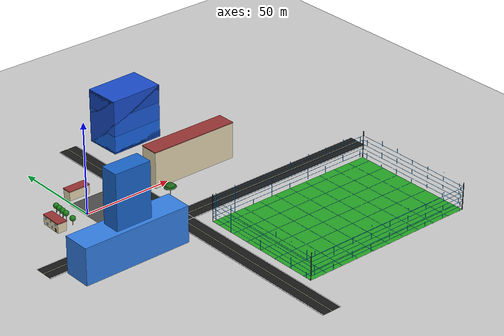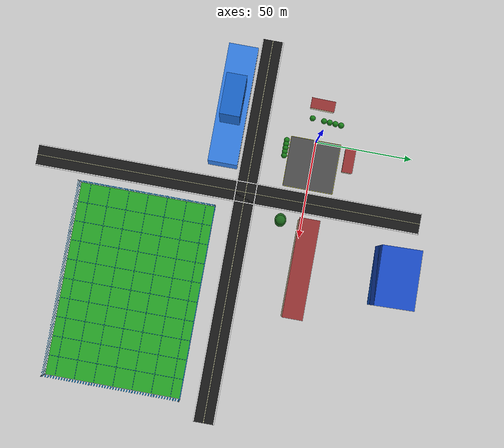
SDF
<?xml version="1.0" encoding="UTF-8"?>
<sdf version="1.9">
  <world name="uwb">

    <!-- ===================== 1. PHYSICS & GPS COORDINATE ===================== -->
    <physics type="ode">
      <max_step_size>0.004</max_step_size>
      <real_time_factor>1.0</real_time_factor>
      <real_time_update_rate>250</real_time_update_rate>
    </physics>
    <gravity>0 0 -9.8</gravity>
    <magnetic_field>6e-06 2.3e-05 -4.2e-05</magnetic_field>
    <atmosphere type="adiabatic"/>
    <spherical_coordinates>
      <surface_model>EARTH_WGS84</surface_model>
      <world_frame_orientation>ENU</world_frame_orientation>
      <latitude_deg>10.851572</latitude_deg>
      <longitude_deg>106.772496</longitude_deg>
      <elevation>10.0</elevation>
      <heading_deg>0</heading_deg>
    </spherical_coordinates>

    <!-- ===================== 2. ENVIRONMENT & LIGHT ===================== -->
    <scene>
      <grid>true</grid>
      <ambient>0.4 0.4 0.4 1</ambient>
      <background>0.7 0.7 0.7 1</background>
      <shadows>true</shadows>
    </scene>
    <light name="sunUTC" type="directional">
      <pose>0 0 500 0 -0 0</pose>
      <cast_shadows>true</cast_shadows>
      <intensity>1</intensity>
      <direction>0.001 -0.625 -0.78</direction>
      <diffuse>0.904 0.904 0.904 1</diffuse>
      <specular>0.271 0.271 0.271 1</specular>
      <attenuation>
        <range>2000</range>
        <linear>0</linear>
        <constant>1</constant>
        <quadratic>0</quadratic>
      </attenuation>
      <spot>
        <inner_angle>0</inner_angle>
        <outer_angle>0</outer_angle>
        <falloff>0</falloff>
      </spot>
    </light>

    <!-- ===================== 3. WORLD MODELS ===================== -->
    <model name="ground_plane">
      <static>true</static>
      <link name="link">
        <collision name="collision">
          <geometry>
            <plane>
              <normal>0 0 1</normal>
              <size>500 500</size>
            </plane>
          </geometry>
          <surface>
            <friction>
              <ode/>
            </friction>
            <bounce/>
            <contact/>
          </surface>
        </collision>
        <visual name="visual">
          <geometry>
            <plane>
              <normal>0 0 1</normal>
              <size>500 500</size>
            </plane>
          </geometry>
          <material>
            <ambient>0.8 0.8 0.8 1</ambient>
            <diffuse>0.8 0.8 0.8 1</diffuse>
            <specular>0.8 0.8 0.8 1</specular>
          </material>
        </visual>
        <pose>0 0 0 0 -0 0</pose>
        <inertial>
          <pose>0 0 0 0 -0 0</pose>
          <mass>1</mass>
          <inertia>
            <ixx>1</ixx>
            <ixy>0</ixy>
            <ixz>0</ixz>
            <iyy>1</iyy>
            <iyz>0</iyz>
            <izz>1</izz>
          </inertia>
        </inertial>
        <enable_wind>false</enable_wind>
      </link>
      <pose>0 0 0 0 -0 0</pose>
      <self_collide>false</self_collide>
    </model>
    <!-- UWB world environment (buildings, trees, roads, soccer field, helipad) -->
    <include>
      <uri>model://uwb</uri>
      <pose>0 0 0 0 0 0</pose>
    </include>
    <model name="anchor_0">
      <static>true</static>
      <pose>-2.5 -2.5 0.5 0 0 0</pose>
      <link name="link">
        <visual name="visual">
          <geometry><box><size>0.05 0.05 0.05</size></box></geometry>
          <material><ambient>1 0 0 1</ambient><diffuse>1 0 0 1</diffuse></material>
        </visual>
      </link>
    </model>
    <model name="anchor_1">
      <static>true</static>
      <pose>2.5 -2.5 3.0 0 0 0</pose>
      <link name="link">
        <visual name="visual">
          <geometry><box><size>0.05 0.05 0.05</size></box></geometry>
          <material><ambient>1 0 0 1</ambient><diffuse>1 0 0 1</diffuse></material>
        </visual>
      </link>
    </model>
    <model name="anchor_2">
      <static>true</static>
      <pose>2.5 2.5 0.5 0 0 0</pose>
      <link name="link">
        <visual name="visual">
          <geometry><box><size>0.05 0.05 0.05</size></box></geometry>
          <material><ambient>1 0 0 1</ambient><diffuse>1 0 0 1</diffuse></material>
        </visual>
      </link>
    </model>
    <model name="anchor_3">
      <static>true</static>
      <pose>-2.5 2.5 3.0 0 0 0</pose>
      <link name="link">
        <visual name="visual">
          <geometry><box><size>0.05 0.05 0.05</size></box></geometry>
          <material><ambient>1 0 0 1</ambient><diffuse>1 0 0 1</diffuse></material>
        </visual>
      </link>
    </model>

  </world>
</sdf>

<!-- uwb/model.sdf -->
<sdf version="1.9">
  <!-- UWB world environment: buildings, trees, roads, soccer field, helipad + UWB anchors.
       Self-contained: heliport texture lives under model://uwb/materials/textures. -->
  <model name="uwb">
    <static>true</static>

    <model name="long_2story_building">
      <static>true</static>
      <pose>7 18 0.01 0 0 0</pose>
      <link name="body">
        <collision name="walls_collision">
          <pose>0 0 2.5 0 0 0</pose>
          <geometry>
            <box>
              <size>12 5 5</size>
            </box>
          </geometry>
        </collision>

        <visual name="walls_visual">
          <pose>0 0 2.5 0 0 0</pose>
          <geometry>
            <box>
              <size>12 5 5</size>
            </box>
          </geometry>
          <material>
            <ambient>0.9 0.85 0.7 1</ambient>
            <diffuse>0.9 0.85 0.7 1</diffuse>
          </material>
        </visual>

        <visual name="roof_visual">
          <pose>0 0 5.2 0 0 0</pose>
          <geometry>
            <box>
              <size>12.4 5.4 0.4</size>
            </box>
          </geometry>
          <material>
            <ambient>0.6 0.2 0.2 1</ambient>
            <diffuse>0.6 0.2 0.2 1</diffuse>
          </material>
        </visual>

        <visual name="door_visual">
          <pose>-4 2.51 1 0 0 0</pose>
          <geometry>
            <box><size>1.2 0.05 2.0</size></box>
          </geometry>
          <material>
            <ambient>0.4 0.2 0.1 1</ambient>
          </material>
        </visual>

        <visual name="w_t1_left">
          <pose>-1 2.51 1.5 0 0 0</pose>
          <geometry><box><size>1 0.06 1</size></box></geometry>
          <material><ambient>0.5 0.8 1 1</ambient></material>
        </visual>
        <visual name="w_t1_right">
          <pose>3 2.51 1.5 0 0 0</pose>
          <geometry><box><size>1 0.06 1</size></box></geometry>
          <material><ambient>0.5 0.8 1 1</ambient></material>
        </visual>

        <visual name="w_t2_left">
          <pose>-4 2.51 4 0 0 0</pose>
          <geometry><box><size>1 0.06 1</size></box></geometry>
          <material><ambient>0.5 0.8 1 1</ambient></material>
        </visual>
        <visual name="w_t2_center">
          <pose>0 2.51 4 0 0 0</pose>
          <geometry><box><size>1 0.06 1</size></box></geometry>
          <material><ambient>0.5 0.8 1 1</ambient></material>
        </visual>
        <visual name="w_t2_right">
          <pose>4 2.51 4 0 0 0</pose>
          <geometry><box><size>1 0.06 1</size></box></geometry>
          <material><ambient>0.5 0.8 1 1</ambient></material>
        </visual>
      </link>
    </model>

    <model name="3long_2story_building">
      <static>true</static>
      <pose>-19 0 0.01 0 0 1.55</pose>
      <link name="body">
        <collision name="walls_collision">
          <pose>0 0 2.5 0 0 0</pose>
          <geometry>
            <box>
              <size>12 5 5</size>
            </box>
          </geometry>
        </collision>

        <visual name="walls_visual">
          <pose>0 0 2.5 0 0 0</pose>
          <geometry>
            <box>
              <size>12 5 5</size>
            </box>
          </geometry>
          <material>
            <ambient>0.9 0.85 0.7 1</ambient>
            <diffuse>0.9 0.85 0.7 1</diffuse>
          </material>
        </visual>

        <visual name="roof_visual">
          <pose>0 0 5.2 0 0 0</pose>
          <geometry>
            <box>
              <size>12.4 5.4 0.4</size>
            </box>
          </geometry>
          <material>
            <ambient>0.6 0.2 0.2 1</ambient>
            <diffuse>0.6 0.2 0.2 1</diffuse>
          </material>
        </visual>

        <visual name="door_visual">
          <pose>-4 2.51 1 0 0 0</pose>
          <geometry>
            <box><size>1.2 0.05 2.0</size></box>
          </geometry>
          <material>
            <ambient>0.4 0.2 0.1 1</ambient>
          </material>
        </visual>

        <visual name="w_t1_left">
          <pose>-1 2.51 1.5 0 0 0</pose>
          <geometry><box><size>1 0.06 1</size></box></geometry>
          <material><ambient>0.5 0.8 1 1</ambient></material>
        </visual>
        <visual name="w_t1_right">
          <pose>3 2.51 1.5 0 0 0</pose>
          <geometry><box><size>1 0.06 1</size></box></geometry>
          <material><ambient>0.5 0.8 1 1</ambient></material>
        </visual>

        <visual name="w_t2_left">
          <pose>-4 2.51 4 0 0 0</pose>
          <geometry><box><size>1 0.06 1</size></box></geometry>
          <material><ambient>0.5 0.8 1 1</ambient></material>
        </visual>
        <visual name="w_t2_center">
          <pose>0 2.51 4 0 0 0</pose>
          <geometry><box><size>1 0.06 1</size></box></geometry>
          <material><ambient>0.5 0.8 1 1</ambient></material>
        </visual>
        <visual name="w_t2_right">
          <pose>4 2.51 4 0 0 0</pose>
          <geometry><box><size>1 0.06 1</size></box></geometry>
          <material><ambient>0.5 0.8 1 1</ambient></material>
        </visual>
      </link>
    </model>

    <model name="2long_2story_building">
      <static>true</static>
      <pose>66 3 0.01 0 0 0</pose>
      <link name="body">
        <collision name="walls_collision">
          <pose>0 0 15 0 0 0</pose>
          <geometry>
            <box>
              <size>50 10 20</size>
            </box>
          </geometry>
        </collision>

        <visual name="walls_visual">
          <pose>0 0 10 0 0 0</pose>
          <geometry>
            <box>
              <size>50 10 20</size>
            </box>
          </geometry>
          <material>
            <ambient>0.9 0.85 0.7 1</ambient>
            <diffuse>0.9 0.85 0.7 1</diffuse>
          </material>
        </visual>

        <visual name="roof_visual">
          <pose>0 0 20.2 0 0 0</pose>
          <geometry>
            <box>
              <size>50.4 10.4 0.4</size>
            </box>
          </geometry>
          <material>
            <ambient>0.6 0.2 0.2 1</ambient>
            <diffuse>0.6 0.2 0.2 1</diffuse>
          </material>
        </visual>

        <visual name="door_visual">
          <pose>-20 2.51 1 0 0 0</pose>
          <geometry>
            <box><size>1.2 0.05 2.0</size></box>
          </geometry>
          <material>
            <ambient>0.4 0.2 0.1 1</ambient>
          </material>
        </visual>

        <visual name="w_t1_left">
          <pose>-20 2.51 1.5 0 0 0</pose>
          <geometry><box><size>1 0.06 1</size></box></geometry>
          <material><ambient>0.5 0.8 1 1</ambient></material>
        </visual>
        <visual name="w_t1_center_left">
          <pose>-8 2.51 1.5 0 0 0</pose>
          <geometry><box><size>1 0.06 1</size></box></geometry>
          <material><ambient>0.5 0.8 1 1</ambient></material>
        </visual>
        <visual name="w_t1_center_right">
          <pose>8 2.51 1.5 0 0 0</pose>
          <geometry><box><size>1 0.06 1</size></box></geometry>
          <material><ambient>0.5 0.8 1 1</ambient></material>
        </visual>
        <visual name="w_t1_right">
          <pose>20 2.51 1.5 0 0 0</pose>
          <geometry><box><size>1 0.06 1</size></box></geometry>
          <material><ambient>0.5 0.8 1 1</ambient></material>
        </visual>

        <visual name="w_t2_left">
          <pose>-20 2.51 4 0 0 0</pose>
          <geometry><box><size>1 0.06 1</size></box></geometry>
          <material><ambient>0.5 0.8 1 1</ambient></material>
        </visual>
        <visual name="w_t2_center_left">
          <pose>-8 2.51 4 0 0 0</pose>
          <geometry><box><size>1 0.06 1</size></box></geometry>
          <material><ambient>0.5 0.8 1 1</ambient></material>
        </visual>
        <visual name="w_t2_center">
          <pose>0 2.51 4 0 0 0</pose>
          <geometry><box><size>1 0.06 1</size></box></geometry>
          <material><ambient>0.5 0.8 1 1</ambient></material>
        </visual>
        <visual name="w_t2_center_right">
          <pose>8 2.51 4 0 0 0</pose>
          <geometry><box><size>1 0.06 1</size></box></geometry>
          <material><ambient>0.5 0.8 1 1</ambient></material>
        </visual>
        <visual name="w_t2_right">
          <pose>20 2.51 4 0 0 0</pose>
          <geometry><box><size>1 0.06 1</size></box></geometry>
          <material><ambient>0.5 0.8 1 1</ambient></material>
        </visual>
      </link>
    </model>

    <!-- Updated Building: 100m x 10m x 30m, 3 floors with multiple windows -->
    <model name="building_centered_tower">
      <static>true</static>
      <pose>-9 -45 0 0 0 0</pose>
      <link name="link">
        <visual name="base_structure">
          <pose>0 0 10 0 0 0</pose>
          <geometry>
            <box><size>60 15 20</size></box>
          </geometry>
          <material>
            <ambient>0.2 0.5 0.9 1</ambient>
            <diffuse>0.2 0.5 0.9 1</diffuse>
          </material>
        </visual>

        <visual name="center_tower">
          <pose>0 0 35 0 0 0</pose>
          <geometry>
            <box><size>20 10 30</size></box>
          </geometry>
          <material>
            <ambient>0.1 0.4 0.8 1</ambient>
            <diffuse>0.1 0.4 0.8 1</diffuse>
          </material>
        </visual>

        <visual name="tower_window_frame">
          <pose>0 5.01 40 0 0 0</pose>
          <geometry><box><size>4 0.1 6</size></box></geometry>
          <material><ambient>0.1 0.1 0.1 1</ambient></material>
        </visual>

        <visual name="tower_window_glass">
          <pose>0 5.05 40 0 0 0</pose>
          <geometry><box><size>3.6 0.05 5.6</size></box></geometry>
          <material>
            <ambient>0.4 0.7 0.95 0.6</ambient>
            <diffuse>0.4 0.7 0.95 0.6</diffuse>
          </material>
        </visual>

        <visual name="base_balcony_line">
          <pose>0 7.55 15 0 0 0</pose>
          <geometry><box><size>60 0.2 1</size></box></geometry>
          <material><ambient>1 1 1 1</ambient></material>
        </visual>
      </link>
    </model>

    <!-- New blue house: 3 floors, 20x30x30 m -->
    <model name="blue_3floor_house">
      <static>true</static>
      <pose>62 50 0.01 0 0 1.6</pose>
      <link name="body">
        <collision name="collision">
          <pose>0 0 15 0 0 0</pose>
          <geometry><box><size>20 30 30</size></box></geometry>
        </collision>

        <visual name="walls_visual">
          <pose>0 0 15 0 0 0</pose>
          <geometry><box><size>20 30 30</size></box></geometry>
          <material>
            <ambient>0.1 0.3 0.8 1</ambient>
            <diffuse>0.1 0.3 0.8 1</diffuse>
          </material>
        </visual>

        <visual name="floor1">
          <pose>0 0 5 0 0 0</pose>
          <geometry><box><size>20 30 10</size></box></geometry>
          <material>
            <ambient>0.1 0.4 0.9 1</ambient>
            <diffuse>0.1 0.4 0.9 1</diffuse>
          </material>
        </visual>

        <visual name="floor2">
          <pose>0 0 15 0 0 0</pose>
          <geometry><box><size>20 30 10</size></box></geometry>
          <material>
            <ambient>0.1 0.35 0.85 1</ambient>
            <diffuse>0.1 0.35 0.85 1</diffuse>
          </material>
        </visual>

        <visual name="floor3">
          <pose>0 0 25 0 0 0</pose>
          <geometry><box><size>20 30 10</size></box></geometry>
          <material>
            <ambient>0.08 0.28 0.75 1</ambient>
            <diffuse>0.08 0.28 0.75 1</diffuse>
          </material>
        </visual>

        <inertial>
          <mass>1000</mass>
          <inertia>
            <ixx>1</ixx><ixy>0</ixy><ixz>0</ixz><iyy>1</iyy><iyz>0</iyz><izz>1</izz>
          </inertia>
        </inertial>
      </link>
    </model>

    <model name="tree_model">
      <static>true</static>
      <pose>43 -11 0 0 0 0</pose>
      <link name="link">
        <collision name="trunk_collision">
          <pose>0 0 2 0 0 0</pose>
          <geometry>
            <cylinder>
              <radius>0.15</radius>
              <length>4.0</length>
            </cylinder>
          </geometry>
        </collision>

        <visual name="trunk_visual">
          <pose>0 0 2 0 0 0</pose>
          <geometry>
            <cylinder>
              <radius>0.15</radius>
              <length>4.0</length>
            </cylinder>
          </geometry>
          <material>
            <ambient>0.3 0.2 0.1 1</ambient>
            <diffuse>0.3 0.2 0.1 1</diffuse>
          </material>
        </visual>

        <visual name="branch_1">
          <pose>-0.5 0 3.5 0 -0.8 0</pose>
          <geometry>
            <cylinder>
              <radius>0.08</radius>
              <length>1.5</length>
            </cylinder>
          </geometry>
          <material>
            <ambient>0.3 0.2 0.1 1</ambient>
          </material>
        </visual>

        <visual name="branch_2">
          <pose>0.5 0 3.5 0 0.8 0</pose>
          <geometry>
            <cylinder>
              <radius>0.08</radius>
              <length>1.5</length>
            </cylinder>
          </geometry>
          <material>
            <ambient>0.3 0.2 0.1 1</ambient>
          </material>
        </visual>

        <visual name="leaves_top">
          <pose>0 0 5 0 0 0</pose>
          <geometry>
            <ellipsoid>
              <radii>2.5 2.5 1.2</radii>
            </ellipsoid>
          </geometry>
          <material>
            <ambient>0.1 0.4 0.1 1</ambient>
            <diffuse>0.1 0.4 0.1 1</diffuse>
          </material>
        </visual>

        <visual name="leaves_lower">
          <pose>0 0 4.2 0 0 0</pose>
          <geometry>
            <ellipsoid>
              <radii>3.5 3.0 0.8</radii>
            </ellipsoid>
          </geometry>
          <material>
            <ambient>0.1 0.35 0.1 0.9</ambient>
            <diffuse>0.1 0.35 0.1 0.9</diffuse>
          </material>
        </visual>
      </link>
    </model>

    <!-- Row of 5 trees, 5m tall, spaced 2m apart -->
    <model name="tree_row">
      <static>true</static>
      <pose>6 -15 0 0 0 0</pose>
      <link name="link">
        <!-- Tree 1 -->
        <visual name="tree_1_trunk">
          <pose>-4 0 1.25 0 0 0</pose>
          <geometry><cylinder><radius>0.15</radius><length>2.5</length></cylinder></geometry>
          <material><ambient>0.4 0.2 0.1 1</ambient><diffuse>0.4 0.2 0.1 1</diffuse></material>
        </visual>
        <visual name="tree_1_foliage">
          <pose>-4 0 3.8 0 0 0</pose>
          <geometry><sphere><radius>1.5</radius></sphere></geometry>
          <material><ambient>0.1 0.5 0.1 1</ambient><diffuse>0.1 0.5 0.1 1</diffuse></material>
        </visual>

        <!-- Tree 2 -->
        <visual name="tree_2_trunk">
          <pose>-2 0 1.25 0 0 0</pose>
          <geometry><cylinder><radius>0.15</radius><length>2.5</length></cylinder></geometry>
          <material><ambient>0.4 0.2 0.1 1</ambient><diffuse>0.4 0.2 0.1 1</diffuse></material>
        </visual>
        <visual name="tree_2_foliage">
          <pose>-2 0 3.8 0 0 0</pose>
          <geometry><sphere><radius>1.5</radius></sphere></geometry>
          <material><ambient>0.1 0.5 0.1 1</ambient><diffuse>0.1 0.5 0.1 1</diffuse></material>
        </visual>

        <!-- Tree 3 -->
        <visual name="tree_3_trunk">
          <pose>0 0 1.25 0 0 0</pose>
          <geometry><cylinder><radius>0.15</radius><length>2.5</length></cylinder></geometry>
          <material><ambient>0.4 0.2 0.1 1</ambient><diffuse>0.4 0.2 0.1 1</diffuse></material>
        </visual>
        <visual name="tree_3_foliage">
          <pose>0 0 3.8 0 0 0</pose>
          <geometry><sphere><radius>1.5</radius></sphere></geometry>
          <material><ambient>0.1 0.5 0.1 1</ambient><diffuse>0.1 0.5 0.1 1</diffuse></material>
        </visual>

        <!-- Tree 4 -->
        <visual name="tree_4_trunk">
          <pose>2 0 1.25 0 0 0</pose>
          <geometry><cylinder><radius>0.15</radius><length>2.5</length></cylinder></geometry>
          <material><ambient>0.4 0.2 0.1 1</ambient><diffuse>0.4 0.2 0.1 1</diffuse></material>
        </visual>
        <visual name="tree_4_foliage">
          <pose>2 0 3.8 0 0 0</pose>
          <geometry><sphere><radius>1.5</radius></sphere></geometry>
          <material><ambient>0.1 0.5 0.1 1</ambient><diffuse>0.1 0.5 0.1 1</diffuse></material>
        </visual>

        <!-- Tree 5 -->
        <visual name="tree_5_trunk">
          <pose>4 0 1.25 0 0 0</pose>
          <geometry><cylinder><radius>0.15</radius><length>2.5</length></cylinder></geometry>
          <material><ambient>0.4 0.2 0.1 1</ambient><diffuse>0.4 0.2 0.1 1</diffuse></material>
        </visual>
        <visual name="tree_5_foliage">
          <pose>4 0 3.8 0 0 0</pose>
          <geometry><sphere><radius>1.5</radius></sphere></geometry>
          <material><ambient>0.1 0.5 0.1 1</ambient><diffuse>0.1 0.5 0.1 1</diffuse></material>
        </visual>
      </link>
    </model>

    <!-- Row of 5 trees, 5m tall, spaced 2m apart -->
    <model name="four_row">
      <static>true</static>
      <pose>-11 2 0 0 0 1.5</pose>
      <link name="link">
        <!-- Tree 1 -->
        <visual name="tree_1_trunk">
          <pose>-6 0 1.25 0 0 0</pose>
          <geometry><cylinder><radius>0.15</radius><length>2.5</length></cylinder></geometry>
          <material><ambient>0.4 0.2 0.1 1</ambient><diffuse>0.4 0.2 0.1 1</diffuse></material>
        </visual>
        <visual name="tree_1_foliage">
          <pose>-6 0 3.8 0 0 0</pose>
          <geometry><sphere><radius>1.5</radius></sphere></geometry>
          <material><ambient>0.1 0.5 0.1 1</ambient><diffuse>0.1 0.5 0.1 1</diffuse></material>
        </visual>

        <!-- Tree 2 -->
        <visual name="tree_2_trunk">
          <pose>0 0 1.25 0 0 0</pose>
          <geometry><cylinder><radius>0.15</radius><length>2.5</length></cylinder></geometry>
          <material><ambient>0.4 0.2 0.1 1</ambient><diffuse>0.4 0.2 0.1 1</diffuse></material>
        </visual>
        <visual name="tree_2_foliage">
          <pose>0 0 3.8 0 0 0</pose>
          <geometry><sphere><radius>1.5</radius></sphere></geometry>
          <material><ambient>0.1 0.5 0.1 1</ambient><diffuse>0.1 0.5 0.1 1</diffuse></material>
        </visual>

        <!-- Tree 3 -->
        <visual name="tree_3_trunk">
          <pose>3 0 1.25 0 0 0</pose>
          <geometry><cylinder><radius>0.15</radius><length>2.5</length></cylinder></geometry>
          <material><ambient>0.4 0.2 0.1 1</ambient><diffuse>0.4 0.2 0.1 1</diffuse></material>
        </visual>
        <visual name="tree_3_foliage">
          <pose>3 0 3.8 0 0 0</pose>
          <geometry><sphere><radius>1.5</radius></sphere></geometry>
          <material><ambient>0.1 0.5 0.1 1</ambient><diffuse>0.1 0.5 0.1 1</diffuse></material>
        </visual>

        <!-- Tree 4 -->
        <visual name="tree_4_trunk">
          <pose>6 0 1.25 0 0 0</pose>
          <geometry><cylinder><radius>0.15</radius><length>2.5</length></cylinder></geometry>
          <material><ambient>0.4 0.2 0.1 1</ambient><diffuse>0.4 0.2 0.1 1</diffuse></material>
        </visual>
        <visual name="tree_4_foliage">
          <pose>6 0 3.8 0 0 0</pose>
          <geometry><sphere><radius>1.5</radius></sphere></geometry>
          <material><ambient>0.1 0.5 0.1 1</ambient><diffuse>0.1 0.5 0.1 1</diffuse></material>
        </visual>

        <!-- Tree 5 -->
        <visual name="tree_5_trunk">
          <pose>9 0 1.25 0 0 0</pose>
          <geometry><cylinder><radius>0.15</radius><length>2.5</length></cylinder></geometry>
          <material><ambient>0.4 0.2 0.1 1</ambient><diffuse>0.4 0.2 0.1 1</diffuse></material>
        </visual>
        <visual name="tree_5_foliage">
          <pose>9 0 3.8 0 0 0</pose>
          <geometry><sphere><radius>1.5</radius></sphere></geometry>
          <material><ambient>0.1 0.5 0.1 1</ambient><diffuse>0.1 0.5 0.1 1</diffuse></material>
        </visual>
      </link>
    </model>

    <!-- Asphalt Road with white and yellow markings -->
    <model name="road">
      <static>true</static>
      <pose>52 -31 0 0 0 0</pose>
      <link name="link">
        <visual name="asphalt_surface">
          <pose>0 0 0.01 0 0 0</pose>
          <geometry><box><size>200 10 0.02</size></box></geometry>
          <material>
            <ambient>0.1 0.1 0.1 1</ambient>
            <diffuse>0.1 0.1 0.1 1</diffuse>
          </material>
        </visual>

        <visual name="white_border_left">
          <pose>0 -5.25 0.02 0 0 0</pose>
          <geometry><box><size>200 0.5 0.05</size></box></geometry>
          <material>
            <ambient>1 1 1 1</ambient>
            <diffuse>1 1 1 1</diffuse>
          </material>
        </visual>

        <visual name="white_border_right">
          <pose>0 5.25 0.02 0 0 0</pose>
          <geometry><box><size>200 0.5 0.05</size></box></geometry>
          <material>
            <ambient>1 1 1 1</ambient>
            <diffuse>1 1 1 1</diffuse>
          </material>
        </visual>

        <visual name="yellow_center_line">
          <pose>0 0 0.02 0 0 0</pose>
          <geometry><box><size>200 0.3 0.05</size></box></geometry>
          <material>
            <ambient>1 1 0.8 1</ambient>
            <diffuse>1 1 0.8 1</diffuse>
          </material>
        </visual>
      </link>
    </model>

    <!-- Horizontal Road (perpendicular) - creates intersection -->
    <model name="horizontal_road">
      <static>true</static>
      <pose>32 -40 0 0 0 0</pose>
      <link name="link">
        <visual name="asphalt_surface_h">
          <pose>0 0 0.01 0 0 0</pose>
          <geometry><box><size>10 200 0.02</size></box></geometry>
          <material>
            <ambient>0.1 0.1 0.1 1</ambient>
            <diffuse>0.1 0.1 0.1 1</diffuse>
          </material>
        </visual>

        <visual name="white_border_front">
          <pose>-5.25 0 0.02 0 0 0</pose>
          <geometry><box><size>0.5 200 0.05</size></box></geometry>
          <material>
            <ambient>1 1 1 1</ambient>
            <diffuse>1 1 1 1</diffuse>
          </material>
        </visual>

        <visual name="white_border_back">
          <pose>5.25 0 0.02 0 0 0</pose>
          <geometry><box><size>0.5 200 0.05</size></box></geometry>
          <material>
            <ambient>1 1 1 1</ambient>
            <diffuse>1 1 1 1</diffuse>
          </material>
        </visual>

        <visual name="yellow_center_line_h">
          <pose>0 0 0.02 0 0 0</pose>
          <geometry><box><size>0.3 200 0.05</size></box></geometry>
          <material>
            <ambient>1 1 0.8 1</ambient>
            <diffuse>1 1 0.8 1</diffuse>
          </material>
        </visual>
      </link>
    </model>

    <!-- Soccer Field with Artificial Grass and Blue Grid -->
    <model name="soccer_field">
      <static>true</static>
      <pose>92 -80 0 0 0 0</pose>
      <link name="field">
        <visual name="grass_surface">
          <pose>0 0 0.01 0 0 0</pose>
          <geometry>
            <box><size>100 70 0.02</size></box>
          </geometry>
          <material>
            <ambient>0.15 0.65 0.15 1</ambient>
            <diffuse>0.15 0.65 0.15 1</diffuse>
          </material>
        </visual>

        <!-- Vertical grid lines (along x-axis) -->
        <visual name="grid_v_1">
          <pose>-40 0 0.02 0 0 0</pose>
          <geometry><box><size>0.15 70 0.01</size></box></geometry>
          <material><ambient>0 0.4 0.9 1</ambient><diffuse>0 0.4 0.9 1</diffuse></material>
        </visual>
        <visual name="grid_v_2">
          <pose>-30 0 0.02 0 0 0</pose>
          <geometry><box><size>0.15 70 0.01</size></box></geometry>
          <material><ambient>0 0.4 0.9 1</ambient><diffuse>0 0.4 0.9 1</diffuse></material>
        </visual>
        <visual name="grid_v_3">
          <pose>-20 0 0.02 0 0 0</pose>
          <geometry><box><size>0.15 70 0.01</size></box></geometry>
          <material><ambient>0 0.4 0.9 1</ambient><diffuse>0 0.4 0.9 1</diffuse></material>
        </visual>
        <visual name="grid_v_4">
          <pose>-10 0 0.02 0 0 0</pose>
          <geometry><box><size>0.15 70 0.01</size></box></geometry>
          <material><ambient>0 0.4 0.9 1</ambient><diffuse>0 0.4 0.9 1</diffuse></material>
        </visual>
        <visual name="grid_v_5">
          <pose>0 0 0.02 0 0 0</pose>
          <geometry><box><size>0.15 70 0.01</size></box></geometry>
          <material><ambient>0 0.4 0.9 1</ambient><diffuse>0 0.4 0.9 1</diffuse></material>
        </visual>
        <visual name="grid_v_6">
          <pose>10 0 0.02 0 0 0</pose>
          <geometry><box><size>0.15 70 0.01</size></box></geometry>
          <material><ambient>0 0.4 0.9 1</ambient><diffuse>0 0.4 0.9 1</diffuse></material>
        </visual>
        <visual name="grid_v_7">
          <pose>20 0 0.02 0 0 0</pose>
          <geometry><box><size>0.15 70 0.01</size></box></geometry>
          <material><ambient>0 0.4 0.9 1</ambient><diffuse>0 0.4 0.9 1</diffuse></material>
        </visual>
        <visual name="grid_v_8">
          <pose>30 0 0.02 0 0 0</pose>
          <geometry><box><size>0.15 70 0.01</size></box></geometry>
          <material><ambient>0 0.4 0.9 1</ambient><diffuse>0 0.4 0.9 1</diffuse></material>
        </visual>
        <visual name="grid_v_9">
          <pose>40 0 0.02 0 0 0</pose>
          <geometry><box><size>0.15 70 0.01</size></box></geometry>
          <material><ambient>0 0.4 0.9 1</ambient><diffuse>0 0.4 0.9 1</diffuse></material>
        </visual>

        <!-- Horizontal grid lines (along y-axis) -->
        <visual name="grid_h_1">
          <pose>0 -30 0.02 0 0 0</pose>
          <geometry><box><size>100 0.15 0.01</size></box></geometry>
          <material><ambient>0 0.4 0.9 1</ambient><diffuse>0 0.4 0.9 1</diffuse></material>
        </visual>
        <visual name="grid_h_2">
          <pose>0 -20 0.02 0 0 0</pose>
          <geometry><box><size>100 0.15 0.01</size></box></geometry>
          <material><ambient>0 0.4 0.9 1</ambient><diffuse>0 0.4 0.9 1</diffuse></material>
        </visual>
        <visual name="grid_h_3">
          <pose>0 -10 0.02 0 0 0</pose>
          <geometry><box><size>100 0.15 0.01</size></box></geometry>
          <material><ambient>0 0.4 0.9 1</ambient><diffuse>0 0.4 0.9 1</diffuse></material>
        </visual>
        <visual name="grid_h_4">
          <pose>0 0 0.02 0 0 0</pose>
          <geometry><box><size>100 0.15 0.01</size></box></geometry>
          <material><ambient>0 0.4 0.9 1</ambient><diffuse>0 0.4 0.9 1</diffuse></material>
        </visual>
        <visual name="grid_h_5">
          <pose>0 10 0.02 0 0 0</pose>
          <geometry><box><size>100 0.15 0.01</size></box></geometry>
          <material><ambient>0 0.4 0.9 1</ambient><diffuse>0 0.4 0.9 1</diffuse></material>
        </visual>
        <visual name="grid_h_6">
          <pose>0 20 0.02 0 0 0</pose>
          <geometry><box><size>100 0.15 0.01</size></box></geometry>
          <material><ambient>0 0.4 0.9 1</ambient><diffuse>0 0.4 0.9 1</diffuse></material>
        </visual>
        <visual name="grid_h_7">
          <pose>0 30 0.02 0 0 0</pose>
          <geometry><box><size>100 0.15 0.01</size></box></geometry>
          <material><ambient>0 0.4 0.9 1</ambient><diffuse>0 0.4 0.9 1</diffuse></material>
        </visual>

        <!-- North net - Blue mesh grid -->
        <visual name="net_north_h_1">
          <pose>0 35.1 2.5 0 0 0</pose>
          <geometry><box><size>100.2 0.08 0.08</size></box></geometry>
          <material><ambient>0 0.6 1 1</ambient><diffuse>0 0.6 1 1</diffuse></material>
        </visual>
        <visual name="net_north_h_2">
          <pose>0 35.1 5 0 0 0</pose>
          <geometry><box><size>100.2 0.08 0.08</size></box></geometry>
          <material><ambient>0 0.6 1 1</ambient><diffuse>0 0.6 1 1</diffuse></material>
        </visual>
        <visual name="net_north_h_3">
          <pose>0 35.1 7.5 0 0 0</pose>
          <geometry><box><size>100.2 0.08 0.08</size></box></geometry>
          <material><ambient>0 0.6 1 1</ambient><diffuse>0 0.6 1 1</diffuse></material>
        </visual>
        <visual name="net_north_h_4">
          <pose>0 35.1 10 0 0 0</pose>
          <geometry><box><size>100.2 0.08 0.08</size></box></geometry>
          <material><ambient>0 0.6 1 1</ambient><diffuse>0 0.6 1 1</diffuse></material>
        </visual>
        <visual name="net_north_h_5">
          <pose>0 35.1 12.5 0 0 0</pose>
          <geometry><box><size>100.2 0.08 0.08</size></box></geometry>
          <material><ambient>0 0.6 1 1</ambient><diffuse>0 0.6 1 1</diffuse></material>
        </visual>
        <visual name="net_north_v_1">
          <pose>-48 35.1 7.5 0 0 0</pose>
          <geometry><box><size>0.08 0.08 15</size></box></geometry>
          <material><ambient>0 0.6 1 1</ambient><diffuse>0 0.6 1 1</diffuse></material>
        </visual>
        <visual name="net_north_v_2">
          <pose>-36 35.1 7.5 0 0 0</pose>
          <geometry><box><size>0.08 0.08 15</size></box></geometry>
          <material><ambient>0 0.6 1 1</ambient><diffuse>0 0.6 1 1</diffuse></material>
        </visual>
        <visual name="net_north_v_3">
          <pose>-24 35.1 7.5 0 0 0</pose>
          <geometry><box><size>0.08 0.08 15</size></box></geometry>
          <material><ambient>0 0.6 1 1</ambient><diffuse>0 0.6 1 1</diffuse></material>
        </visual>
        <visual name="net_north_v_4">
          <pose>-12 35.1 7.5 0 0 0</pose>
          <geometry><box><size>0.08 0.08 15</size></box></geometry>
          <material><ambient>0 0.6 1 1</ambient><diffuse>0 0.6 1 1</diffuse></material>
        </visual>
        <visual name="net_north_v_5">
          <pose>0 35.1 7.5 0 0 0</pose>
          <geometry><box><size>0.08 0.08 15</size></box></geometry>
          <material><ambient>0 0.6 1 1</ambient><diffuse>0 0.6 1 1</diffuse></material>
        </visual>
        <visual name="net_north_v_6">
          <pose>12 35.1 7.5 0 0 0</pose>
          <geometry><box><size>0.08 0.08 15</size></box></geometry>
          <material><ambient>0 0.6 1 1</ambient><diffuse>0 0.6 1 1</diffuse></material>
        </visual>
        <visual name="net_north_v_7">
          <pose>24 35.1 7.5 0 0 0</pose>
          <geometry><box><size>0.08 0.08 15</size></box></geometry>
          <material><ambient>0 0.6 1 1</ambient><diffuse>0 0.6 1 1</diffuse></material>
        </visual>
        <visual name="net_north_v_8">
          <pose>36 35.1 7.5 0 0 0</pose>
          <geometry><box><size>0.08 0.08 15</size></box></geometry>
          <material><ambient>0 0.6 1 1</ambient><diffuse>0 0.6 1 1</diffuse></material>
        </visual>
        <visual name="net_north_v_9">
          <pose>48 35.1 7.5 0 0 0</pose>
          <geometry><box><size>0.08 0.08 15</size></box></geometry>
          <material><ambient>0 0.6 1 1</ambient><diffuse>0 0.6 1 1</diffuse></material>
        </visual>

        <!-- South net - Blue mesh grid -->
        <visual name="net_south_h_1">
          <pose>0 -35.1 2.5 0 0 0</pose>
          <geometry><box><size>100.2 0.08 0.08</size></box></geometry>
          <material><ambient>0 0.6 1 1</ambient><diffuse>0 0.6 1 1</diffuse></material>
        </visual>
        <visual name="net_south_h_2">
          <pose>0 -35.1 5 0 0 0</pose>
          <geometry><box><size>100.2 0.08 0.08</size></box></geometry>
          <material><ambient>0 0.6 1 1</ambient><diffuse>0 0.6 1 1</diffuse></material>
        </visual>
        <visual name="net_south_h_3">
          <pose>0 -35.1 7.5 0 0 0</pose>
          <geometry><box><size>100.2 0.08 0.08</size></box></geometry>
          <material><ambient>0 0.6 1 1</ambient><diffuse>0 0.6 1 1</diffuse></material>
        </visual>
        <visual name="net_south_h_4">
          <pose>0 -35.1 10 0 0 0</pose>
          <geometry><box><size>100.2 0.08 0.08</size></box></geometry>
          <material><ambient>0 0.6 1 1</ambient><diffuse>0 0.6 1 1</diffuse></material>
        </visual>
        <visual name="net_south_h_5">
          <pose>0 -35.1 12.5 0 0 0</pose>
          <geometry><box><size>100.2 0.08 0.08</size></box></geometry>
          <material><ambient>0 0.6 1 1</ambient><diffuse>0 0.6 1 1</diffuse></material>
        </visual>
        <visual name="net_south_v_1">
          <pose>-48 -35.1 7.5 0 0 0</pose>
          <geometry><box><size>0.08 0.08 15</size></box></geometry>
          <material><ambient>0 0.6 1 1</ambient><diffuse>0 0.6 1 1</diffuse></material>
        </visual>
        <visual name="net_south_v_2">
          <pose>-36 -35.1 7.5 0 0 0</pose>
          <geometry><box><size>0.08 0.08 15</size></box></geometry>
          <material><ambient>0 0.6 1 1</ambient><diffuse>0 0.6 1 1</diffuse></material>
        </visual>
        <visual name="net_south_v_3">
          <pose>-24 -35.1 7.5 0 0 0</pose>
          <geometry><box><size>0.08 0.08 15</size></box></geometry>
          <material><ambient>0 0.6 1 1</ambient><diffuse>0 0.6 1 1</diffuse></material>
        </visual>
        <visual name="net_south_v_4">
          <pose>-12 -35.1 7.5 0 0 0</pose>
          <geometry><box><size>0.08 0.08 15</size></box></geometry>
          <material><ambient>0 0.6 1 1</ambient><diffuse>0 0.6 1 1</diffuse></material>
        </visual>
        <visual name="net_south_v_5">
          <pose>0 -35.1 7.5 0 0 0</pose>
          <geometry><box><size>0.08 0.08 15</size></box></geometry>
          <material><ambient>0 0.6 1 1</ambient><diffuse>0 0.6 1 1</diffuse></material>
        </visual>
        <visual name="net_south_v_6">
          <pose>12 -35.1 7.5 0 0 0</pose>
          <geometry><box><size>0.08 0.08 15</size></box></geometry>
          <material><ambient>0 0.6 1 1</ambient><diffuse>0 0.6 1 1</diffuse></material>
        </visual>
        <visual name="net_south_v_7">
          <pose>24 -35.1 7.5 0 0 0</pose>
          <geometry><box><size>0.08 0.08 15</size></box></geometry>
          <material><ambient>0 0.6 1 1</ambient><diffuse>0 0.6 1 1</diffuse></material>
        </visual>
        <visual name="net_south_v_8">
          <pose>36 -35.1 7.5 0 0 0</pose>
          <geometry><box><size>0.08 0.08 15</size></box></geometry>
          <material><ambient>0 0.6 1 1</ambient><diffuse>0 0.6 1 1</diffuse></material>
        </visual>
        <visual name="net_south_v_9">
          <pose>48 -35.1 7.5 0 0 0</pose>
          <geometry><box><size>0.08 0.08 15</size></box></geometry>
          <material><ambient>0 0.6 1 1</ambient><diffuse>0 0.6 1 1</diffuse></material>
        </visual>

        <!-- East net - Blue mesh grid -->
        <visual name="net_east_h_1">
          <pose>50.1 0 2.5 0 0 0</pose>
          <geometry><box><size>0.08 70.2 0.08</size></box></geometry>
          <material><ambient>0 0.6 1 1</ambient><diffuse>0 0.6 1 1</diffuse></material>
        </visual>
        <visual name="net_east_h_2">
          <pose>50.1 0 5 0 0 0</pose>
          <geometry><box><size>0.08 70.2 0.08</size></box></geometry>
          <material><ambient>0 0.6 1 1</ambient><diffuse>0 0.6 1 1</diffuse></material>
        </visual>
        <visual name="net_east_h_3">
          <pose>50.1 0 7.5 0 0 0</pose>
          <geometry><box><size>0.08 70.2 0.08</size></box></geometry>
          <material><ambient>0 0.6 1 1</ambient><diffuse>0 0.6 1 1</diffuse></material>
        </visual>
        <visual name="net_east_h_4">
          <pose>50.1 0 10 0 0 0</pose>
          <geometry><box><size>0.08 70.2 0.08</size></box></geometry>
          <material><ambient>0 0.6 1 1</ambient><diffuse>0 0.6 1 1</diffuse></material>
        </visual>
        <visual name="net_east_h_5">
          <pose>50.1 0 12.5 0 0 0</pose>
          <geometry><box><size>0.08 70.2 0.08</size></box></geometry>
          <material><ambient>0 0.6 1 1</ambient><diffuse>0 0.6 1 1</diffuse></material>
        </visual>
        <visual name="net_east_v_1">
          <pose>50.1 -32.1 7.5 0 0 0</pose>
          <geometry><box><size>0.08 0.08 15</size></box></geometry>
          <material><ambient>0 0.6 1 1</ambient><diffuse>0 0.6 1 1</diffuse></material>
        </visual>
        <visual name="net_east_v_2">
          <pose>50.1 -21.4 7.5 0 0 0</pose>
          <geometry><box><size>0.08 0.08 15</size></box></geometry>
          <material><ambient>0 0.6 1 1</ambient><diffuse>0 0.6 1 1</diffuse></material>
        </visual>
        <visual name="net_east_v_3">
          <pose>50.1 -10.7 7.5 0 0 0</pose>
          <geometry><box><size>0.08 0.08 15</size></box></geometry>
          <material><ambient>0 0.6 1 1</ambient><diffuse>0 0.6 1 1</diffuse></material>
        </visual>
        <visual name="net_east_v_4">
          <pose>50.1 0 7.5 0 0 0</pose>
          <geometry><box><size>0.08 0.08 15</size></box></geometry>
          <material><ambient>0 0.6 1 1</ambient><diffuse>0 0.6 1 1</diffuse></material>
        </visual>
        <visual name="net_east_v_5">
          <pose>50.1 10.7 7.5 0 0 0</pose>
          <geometry><box><size>0.08 0.08 15</size></box></geometry>
          <material><ambient>0 0.6 1 1</ambient><diffuse>0 0.6 1 1</diffuse></material>
        </visual>
        <visual name="net_east_v_6">
          <pose>50.1 21.4 7.5 0 0 0</pose>
          <geometry><box><size>0.08 0.08 15</size></box></geometry>
          <material><ambient>0 0.6 1 1</ambient><diffuse>0 0.6 1 1</diffuse></material>
        </visual>
        <visual name="net_east_v_7">
          <pose>50.1 32.1 7.5 0 0 0</pose>
          <geometry><box><size>0.08 0.08 15</size></box></geometry>
          <material><ambient>0 0.6 1 1</ambient><diffuse>0 0.6 1 1</diffuse></material>
        </visual>

        <!-- West net - Blue mesh grid -->
        <visual name="net_west_h_1">
          <pose>-50.1 0 2.5 0 0 0</pose>
          <geometry><box><size>0.08 70.2 0.08</size></box></geometry>
          <material><ambient>0 0.6 1 1</ambient><diffuse>0 0.6 1 1</diffuse></material>
        </visual>
        <visual name="net_west_h_2">
          <pose>-50.1 0 5 0 0 0</pose>
          <geometry><box><size>0.08 70.2 0.08</size></box></geometry>
          <material><ambient>0 0.6 1 1</ambient><diffuse>0 0.6 1 1</diffuse></material>
        </visual>
        <visual name="net_west_h_3">
          <pose>-50.1 0 7.5 0 0 0</pose>
          <geometry><box><size>0.08 70.2 0.08</size></box></geometry>
          <material><ambient>0 0.6 1 1</ambient><diffuse>0 0.6 1 1</diffuse></material>
        </visual>
        <visual name="net_west_h_4">
          <pose>-50.1 0 10 0 0 0</pose>
          <geometry><box><size>0.08 70.2 0.08</size></box></geometry>
          <material><ambient>0 0.6 1 1</ambient><diffuse>0 0.6 1 1</diffuse></material>
        </visual>
        <visual name="net_west_h_5">
          <pose>-50.1 0 12.5 0 0 0</pose>
          <geometry><box><size>0.08 70.2 0.08</size></box></geometry>
          <material><ambient>0 0.6 1 1</ambient><diffuse>0 0.6 1 1</diffuse></material>
        </visual>
        <visual name="net_west_v_1">
          <pose>-50.1 -32.1 7.5 0 0 0</pose>
          <geometry><box><size>0.08 0.08 15</size></box></geometry>
          <material><ambient>0 0.6 1 1</ambient><diffuse>0 0.6 1 1</diffuse></material>
        </visual>
        <visual name="net_west_v_2">
          <pose>-50.1 -21.4 7.5 0 0 0</pose>
          <geometry><box><size>0.08 0.08 15</size></box></geometry>
          <material><ambient>0 0.6 1 1</ambient><diffuse>0 0.6 1 1</diffuse></material>
        </visual>
        <visual name="net_west_v_3">
          <pose>-50.1 -10.7 7.5 0 0 0</pose>
          <geometry><box><size>0.08 0.08 15</size></box></geometry>
          <material><ambient>0 0.6 1 1</ambient><diffuse>0 0.6 1 1</diffuse></material>
        </visual>
        <visual name="net_west_v_4">
          <pose>-50.1 0 7.5 0 0 0</pose>
          <geometry><box><size>0.08 0.08 15</size></box></geometry>
          <material><ambient>0 0.6 1 1</ambient><diffuse>0 0.6 1 1</diffuse></material>
        </visual>
        <visual name="net_west_v_5">
          <pose>-50.1 10.7 7.5 0 0 0</pose>
          <geometry><box><size>0.08 0.08 15</size></box></geometry>
          <material><ambient>0 0.6 1 1</ambient><diffuse>0 0.6 1 1</diffuse></material>
        </visual>
        <visual name="net_west_v_6">
          <pose>-50.1 21.4 7.5 0 0 0</pose>
          <geometry><box><size>0.08 0.08 15</size></box></geometry>
          <material><ambient>0 0.6 1 1</ambient><diffuse>0 0.6 1 1</diffuse></material>
        </visual>
        <visual name="net_west_v_7">
          <pose>-50.1 32.1 7.5 0 0 0</pose>
          <geometry><box><size>0.08 0.08 15</size></box></geometry>
          <material><ambient>0 0.6 1 1</ambient><diffuse>0 0.6 1 1</diffuse></material>
        </visual>

        <!-- Corner posts (4 corners, 15m tall) -->
        <visual name="post_ne">
          <pose>50 35 7.5 0 0 0</pose>
          <geometry><box><size>0.3 0.3 15</size></box></geometry>
          <material>
            <ambient>0.2 0.2 0.2 1</ambient>
            <diffuse>0.2 0.2 0.2 1</diffuse>
          </material>
        </visual>

        <visual name="post_nw">
          <pose>-50 35 7.5 0 0 0</pose>
          <geometry><box><size>0.3 0.3 15</size></box></geometry>
          <material>
            <ambient>0.2 0.2 0.2 1</ambient>
            <diffuse>0.2 0.2 0.2 1</diffuse>
          </material>
        </visual>

        <visual name="post_se">
          <pose>50 -35 7.5 0 0 0</pose>
          <geometry><box><size>0.3 0.3 15</size></box></geometry>
          <material>
            <ambient>0.2 0.2 0.2 1</ambient>
            <diffuse>0.2 0.2 0.2 1</diffuse>
          </material>
        </visual>

        <visual name="post_sw">
          <pose>-50 -35 7.5 0 0 0</pose>
          <geometry><box><size>0.3 0.3 15</size></box></geometry>
          <material>
            <ambient>0.2 0.2 0.2 1</ambient>
            <diffuse>0.2 0.2 0.2 1</diffuse>
          </material>
        </visual>

        <inertial>
          <mass>1</mass>
          <inertia>
            <ixx>1</ixx><ixy>0</ixy><ixz>0</ixz><iyy>1</iyy><iyz>0</iyz><izz>1</izz>
          </inertia>
        </inertial>
      </link>
    </model>

    <!-- HELIPAD in Safe Zone + 4 UWB anchors -->
    <model name="helipad">
      <static>true</static>
      <pose>0 0 0.008 0 0 0</pose>
      <link name="link">
        <visual name="visual">
          <geometry>
            <box>
              <size>2 2 0.01</size>
            </box>
          </geometry>
          <material>
            <ambient>1 1 1 1</ambient>
            <diffuse>1 1 1 1</diffuse>
            <specular>0.1 0.1 0.1 1</specular>
            <pbr>
              <metal>
                <albedo_map>model://uwb/materials/textures/Heliport.png</albedo_map>
                <metalness>0.0</metalness>
                <roughness>0.8</roughness>
              </metal>
            </pbr>
          </material>
        </visual>
        <collision name="base_collision">
          <geometry>
            <box>
              <size>2 2 0.01</size>
            </box>
          </geometry>
        </collision>

        <visual name="pillar_1_visual">
          <pose>-1 -1 0.5 0 0 0</pose>
          <geometry>
            <cylinder>
              <radius>0.05</radius>
              <length>1.0</length>
            </cylinder>
          </geometry>
          <material>
            <ambient>0.8 0.2 0.2 1</ambient>
            <diffuse>0.8 0.2 0.2 1</diffuse>
          </material>
        </visual>
        <collision name="pillar_1_collision">
          <pose>-1 -1 0.5 0 0 0</pose>
          <geometry>
            <cylinder>
              <radius>0.05</radius>
              <length>1.0</length>
            </cylinder>
          </geometry>
        </collision>

        <visual name="pillar_2_visual">
          <pose>1 -1 0.75 0 0 0</pose>
          <geometry><cylinder><radius>0.05</radius><length>1.5</length></cylinder></geometry>
          <material><ambient>0.8 0.2 0.2 1</ambient><diffuse>0.8 0.2 0.2 1</diffuse></material>
        </visual>
        <collision name="pillar_2_collision">
          <pose>1 -1 0.75 0 0 0</pose>
          <geometry><cylinder><radius>0.05</radius><length>1.5</length></cylinder></geometry>
        </collision>

        <visual name="pillar_3_visual">
          <pose>1 1 0.75 0 0 0</pose>
          <geometry><cylinder><radius>0.05</radius><length>1.5</length></cylinder></geometry>
          <material><ambient>0.8 0.2 0.2 1</ambient><diffuse>0.8 0.2 0.2 1</diffuse></material>
        </visual>
        <collision name="pillar_3_collision">
          <pose>1 1 0.75 0 0 0</pose>
          <geometry><cylinder><radius>0.05</radius><length>1.5</length></cylinder></geometry>
        </collision>

        <visual name="pillar_4_visual">
          <pose>-1 1 0.75 0 0 0</pose>
          <geometry><cylinder><radius>0.05</radius><length>1.5</length></cylinder></geometry>
          <material><ambient>0.8 0.2 0.2 1</ambient><diffuse>0.8 0.2 0.2 1</diffuse></material>
        </visual>
        <collision name="pillar_4_collision">
          <pose>-1 1 0.75 0 0 0</pose>
          <geometry><cylinder><radius>0.05</radius><length>1.5</length></cylinder></geometry>
        </collision>
      </link>
      <!-- UWB anchors were moved out to worlds/uwb.sdf (top-level anchor_0..anchor_3)
           so they live with the world and are not duplicated. -->
    </model>

    <model name="field_with_border">
      <static>true</static>
      <pose>12 0 0 0 0 0</pose>
      <link name="ground">
        <!-- NỀN SÂN -->
        <visual name="ground_visual">
          <geometry>
            <box>
              <size>26 26 0.01</size>
            </box>
          </geometry>
          <material>
            <ambient>0.2 0.2 0.2 1</ambient>
            <diffuse>0.3 0.3 0.3 1</diffuse>
          </material>
        </visual>

        <collision name="ground_collision">
          <geometry>
            <box>
              <size>26 26 0.01</size>
            </box>
          </geometry>
        </collision>

        <!-- VIỀN VÀNG -->
        <!-- Trên -->
        <visual name="border_top">
          <pose>0 13 0.011 0 0 0</pose>
          <geometry>
            <box>
              <size>26 0.1 0.002</size>
            </box>
          </geometry>
          <material>
            <ambient>1 1 0 1</ambient>
            <diffuse>1 1 0 1</diffuse>
          </material>
        </visual>

        <!-- Dưới -->
        <visual name="border_bottom">
          <pose>0 -13 0.011 0 0 0</pose>
          <geometry>
            <box>
              <size>26 0.1 0.002</size>
            </box>
          </geometry>
          <material>
            <ambient>1 1 0 1</ambient>
            <diffuse>1 1 0 1</diffuse>
          </material>
        </visual>

        <!-- Trái -->
        <visual name="border_left">
          <pose>-13 0 0.011 0 0 0</pose>
          <geometry>
            <box>
              <size>0.1 26 0.002</size>
            </box>
          </geometry>
          <material>
            <ambient>1 1 0 1</ambient>
            <diffuse>1 1 0 1</diffuse>
          </material>
        </visual>

        <!-- Phải -->
        <visual name="border_right">
          <pose>13 0 0.011 0 0 0</pose>
          <geometry>
            <box>
              <size>0.1 26 0.002</size>
            </box>
          </geometry>
          <material>
            <ambient>1 1 0 1</ambient>
            <diffuse>1 1 0 1</diffuse>
          </material>
        </visual>
      </link>
    </model>

  </model>
</sdf>
